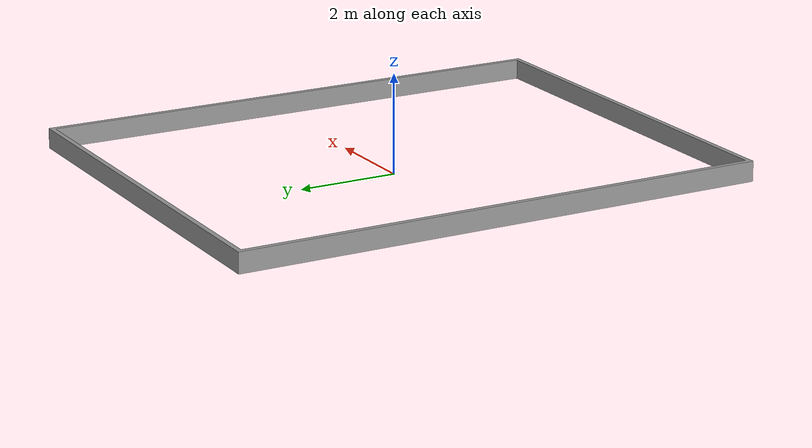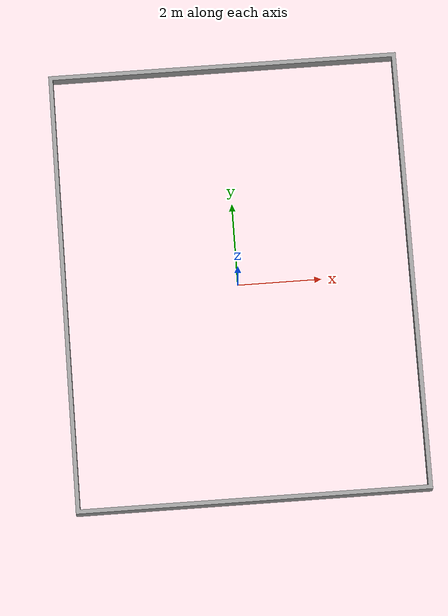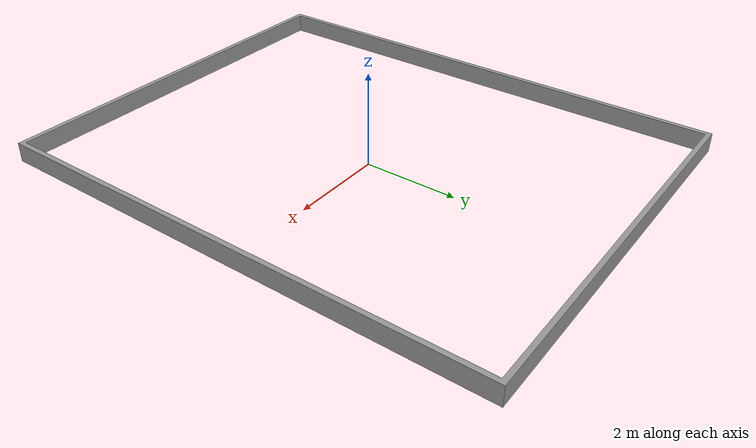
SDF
<sdf version='1.6'>

  <model name='boundary'>
    <pose frame=''>0 0 0.4 0 -0 0</pose>
    <link name='link'>
      <collision name='collision'>
        <geometry>
          <mesh>
            <scale>1 1 1</scale>
            <uri>model://boundary400.stl</uri>
          </mesh>
        </geometry>
      </collision>
      <visual name='visual'>
       <geometry>
          <mesh>
            <scale>1 1 1</scale>
            <uri>model://boundary400.stl</uri>
          </mesh>
        </geometry>
        <material>
          <script>
            <name>Gazebo/Grey</name>
            <uri>file://media/materials/scripts/gazebo.material</uri>
          </script>
        </material>
      </visual>
      <self_collide>1</self_collide>
      <enable_wind>0</enable_wind>
      <kinematic>0</kinematic>
    </link>
  </model>

</sdf>
